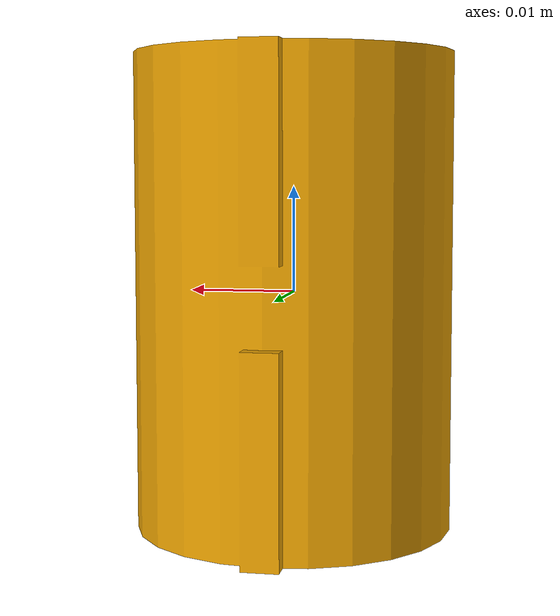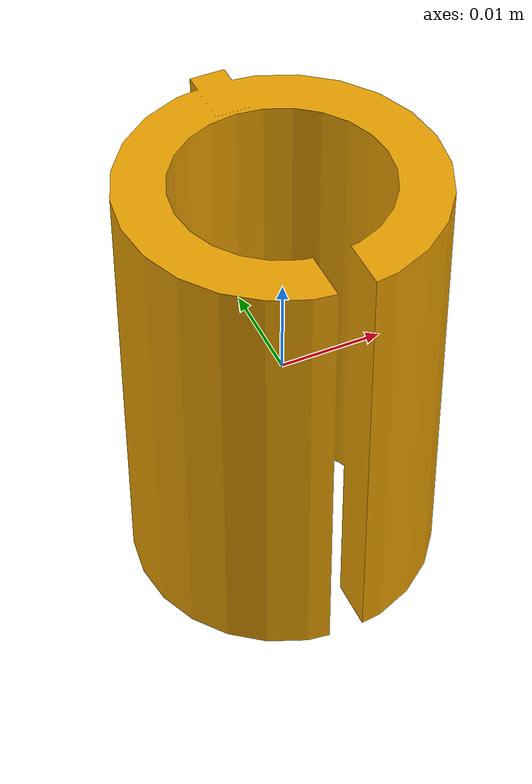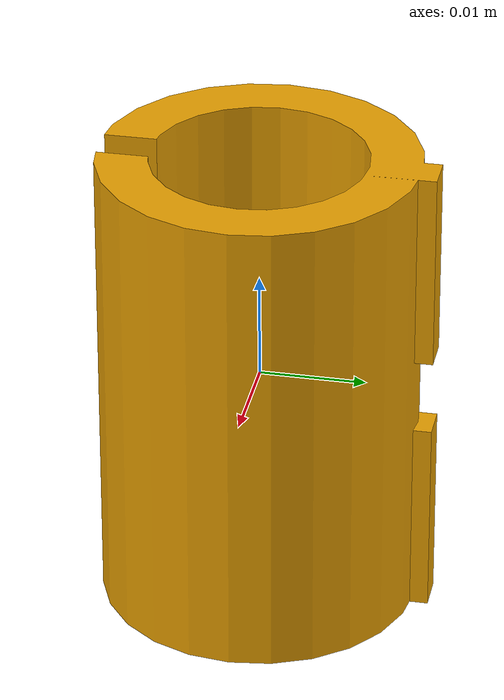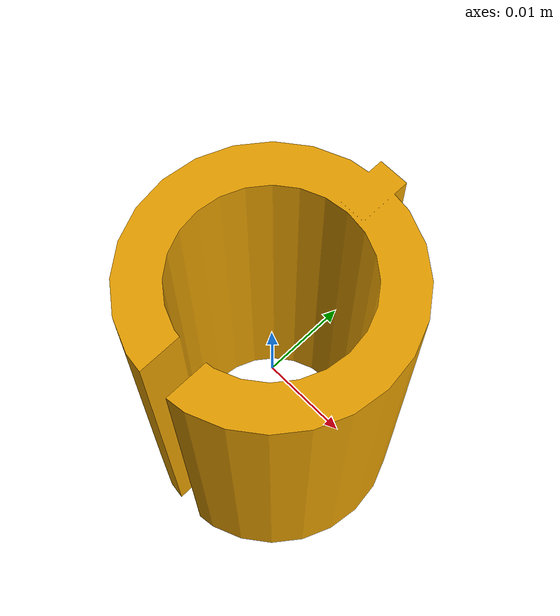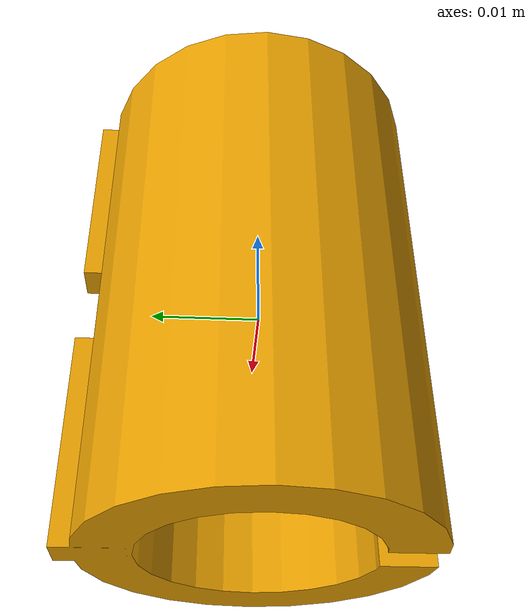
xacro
<?xml version="1.0"?>
<robot name="adapter_sleeve_r20" xmlns:xacro="http://ros.org/wiki/xacro">

	<xacro:include filename="$(find mcr_gazebo_objects)/ros/templates/model.urdf.xacro" />

	<xacro:model_template name="adapter_sleeve_r20" model_filename="adapter_sleeve_r20.dae" scale="0.001" size_x="0.03" size_y="0.03" size_z="0.045" weight="0.010"/>

</robot>

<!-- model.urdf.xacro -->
<robot name="model_template"
		xmlns:xi="http://www.w3.org/2001/XInclude"
	    xmlns:gazebo="http://playerstage.sourceforge.net/gazebo/xmlschema/#gz"
	    xmlns:model="http://playerstage.sourceforge.net/gazebo/xmlschema/#model"
	    xmlns:sensor="http://playerstage.sourceforge.net/gazebo/xmlschema/#sensor"
	    xmlns:body="http://playerstage.sourceforge.net/gazebo/xmlschema/#body"
	    xmlns:geom="http://playerstage.sourceforge.net/gazebo/xmlschema/#geom"
	    xmlns:joint="http://playerstage.sourceforge.net/gazebo/xmlschema/#joint"
	    xmlns:interface="http://playerstage.sourceforge.net/gazebo/xmlschema/#interface"
	    xmlns:rendering="http://playerstage.sourceforge.net/gazebo/xmlschema/#rendering"
	    xmlns:renderable="http://playerstage.sourceforge.net/gazebo/xmlschema/#renderable"
	    xmlns:controller="http://playerstage.sourceforge.net/gazebo/xmlschema/#controller"
	    xmlns:physics="http://playerstage.sourceforge.net/gazebo/xmlschema/#physics"
	    xmlns:xacro="http://www.ros.org/wiki/xacro">

	<xacro:macro name="model_template" params="name model_filename scale size_x size_y size_z weight">
		<link name="${name}_link">
			<inertial>
				<origin xyz="0 0 0" rpy="0 0 0" />
				<mass value="${weight}" />
			    <inertia  ixx="0.0001" ixy="0.0"  ixz="0.0"  iyy="0.0001"  iyz="0.0"  izz="0.0001" />
			</inertial>

			<visual>
				<origin xyz="0 0 ${-size_z/2}" rpy="0 0 0" />
				<geometry>
					<mesh filename="package://mcr_gazebo_objects/common/models/${model_filename}" scale="${scale} ${scale} ${scale}" />
				</geometry>
			</visual>

			<collision>
				<origin xyz="0 0 0" rpy="0 0 0" />
				<geometry>
					<box size="${size_x*0.7} ${size_y*0.7} ${size_z*0.7}"/>
				</geometry>
			</collision >
		</link>

		<gazebo reference="${name}_link">
		    <mu1 value="500.0" />
            <kp  value="100000000.0" />
            <kd  value="1.0" />
			<selfCollide>false</selfCollide>
		</gazebo>

	</xacro:macro>
</robot>
